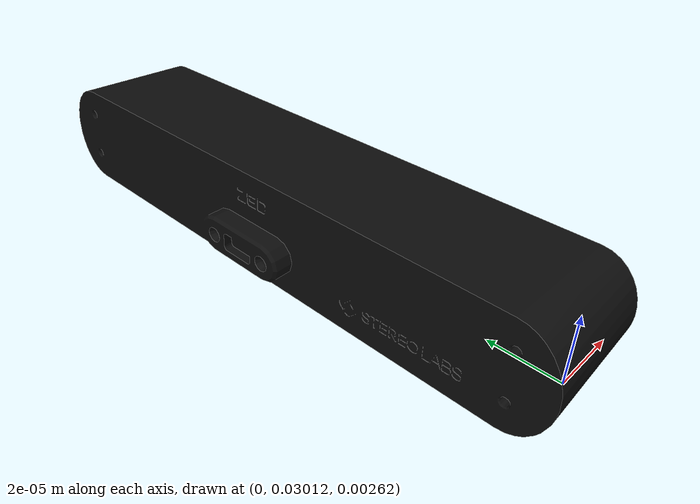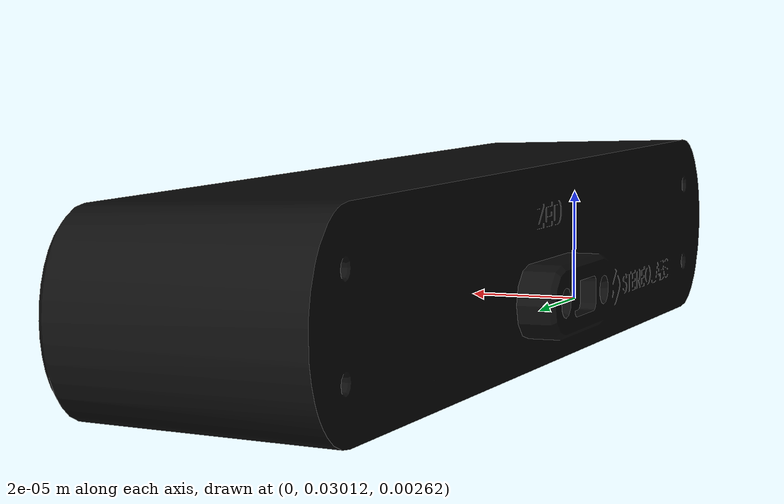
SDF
<?xml version="1.0"?>
<sdf version="1.10">

  <model name="zed2i">
    <static>false</static>

    <!-- BASE LINK                                                  -->

    <link name="zed_base_link">

      <inertial>
        <mass>0.2</mass>
        <inertia>
          <ixx>0.0001</ixx>
          <iyy>0.0001</iyy>
          <izz>0.0001</izz>
          <ixy>0</ixy>
          <ixz>0</ixz>
          <iyz>0</iyz>
        </inertia>
      </inertial>

      <visual name="visual">

        <pose>0 0.03020 0.00262 0 0 0</pose>

        <geometry>
          <mesh>
            <uri>model://zed2i/meshes/zed2i.stl</uri>
            <scale>0.001 0.001 0.001</scale>
          </mesh>
        </geometry>

        <material>
          <ambient>0.02 0.02 0.02 1</ambient>
          <diffuse>0.05 0.05 0.05 1</diffuse>
          <specular>0.15 0.15 0.15 1</specular>
        </material>

      </visual>

      <!-- IMU                                                       -->

      <sensor name="imu" type="imu">

        <always_on>true</always_on>
        <pose>0 0 0 0 0 -1.57</pose>

        <update_rate>200</update_rate>

        <topic>/zed2i/imu</topic>

      </sensor>

    </link>

    <!-- LEFT CAMERA LINK                                           -->

    <link name="zed2i_left_camera_link">

      <pose>0 0 0 0 0 0</pose>

      <inertial>
        <mass>0.001</mass>

        <inertia>
          <ixx>1e-5</ixx>
          <iyy>1e-5</iyy>
          <izz>1e-5</izz>
          <ixy>0</ixy>
          <ixz>0</ixz>
          <iyz>0</iyz>
        </inertia>
      </inertial>

      <!-- LEFT CAMERA                                               -->

      <sensor name="zed2i_left_camera"
              type="camera">

        <pose>0 0 -0.12 0 0 -1.57</pose>

        <always_on>true</always_on>

        <visualize>true</visualize>

        <update_rate>60</update_rate>

        <topic>/zed2i/left/image_raw</topic>

        <camera>

          <!-- 110 degrees -->
          <horizontal_fov>1.25664</horizontal_fov>
          <vertical_fov>0.767945</vertical_fov>

          <image>
            <width>1280</width>
            <height>720</height>
            <format>R8G8B8</format>
          </image>

        </camera>

      </sensor>

    </link>

    <!-- RIGHT CAMERA LINK                                          -->

    <link name="zed2i_right_camera_link">

      <!-- 120 mm stereo baseline -->
      <pose>-0.12 0.12 0 0 0 0</pose>

      <inertial>
        <mass>0.001</mass>

        <inertia>
          <ixx>1e-5</ixx>
          <iyy>1e-5</iyy>
          <izz>1e-5</izz>
          <ixy>0</ixy>
          <ixz>0</ixz>
          <iyz>0</iyz>
        </inertia>
      </inertial>

      <!-- RIGHT CAMERA                                              -->

      <sensor name="zed2i_right_camera"
              type="camera">

        <pose>0 0 -0.12 0 0 -1.57</pose>

        <always_on>true</always_on>

        <visualize>true</visualize>

        <update_rate>60</update_rate>

        <topic>/zed2i/right/image_raw</topic>

        <camera>

          <horizontal_fov>1.25664</horizontal_fov>
          <vertical_fov>0.767945</vertical_fov>

          <image>
            <width>1280</width>
            <height>720</height>
            <format>R8G8B8</format>
          </image>

        </camera>

      </sensor>

    </link>

    <!-- CAMERA MOUNTING JOINTS                                     -->

    <joint name="zed2i_left_camera_joint"
           type="fixed">

      <parent>zed_base_link</parent>
      <child>zed2i_left_camera_link</child>

    </joint>

    <joint name="zed2i_right_camera_joint"
           type="fixed">

      <parent>zed_base_link</parent>
      <child>zed2i_right_camera_link</child>

    </joint>

    <!-- LEFT OPTICAL FRAME                                         -->

    <frame name="zed2i_left_camera_optical_frame"
           attached_to="zed2i_left_camera_link">
      <pose>0 0 0 0 0 0</pose>

    </frame>

    <!-- RIGHT OPTICAL FRAME                                        -->

    <frame name="zed2i_right_camera_optical_frame"
           attached_to="zed2i_right_camera_link">
      <pose>0 0 0 0 0 0</pose>
    </frame>

  </model>

</sdf>
